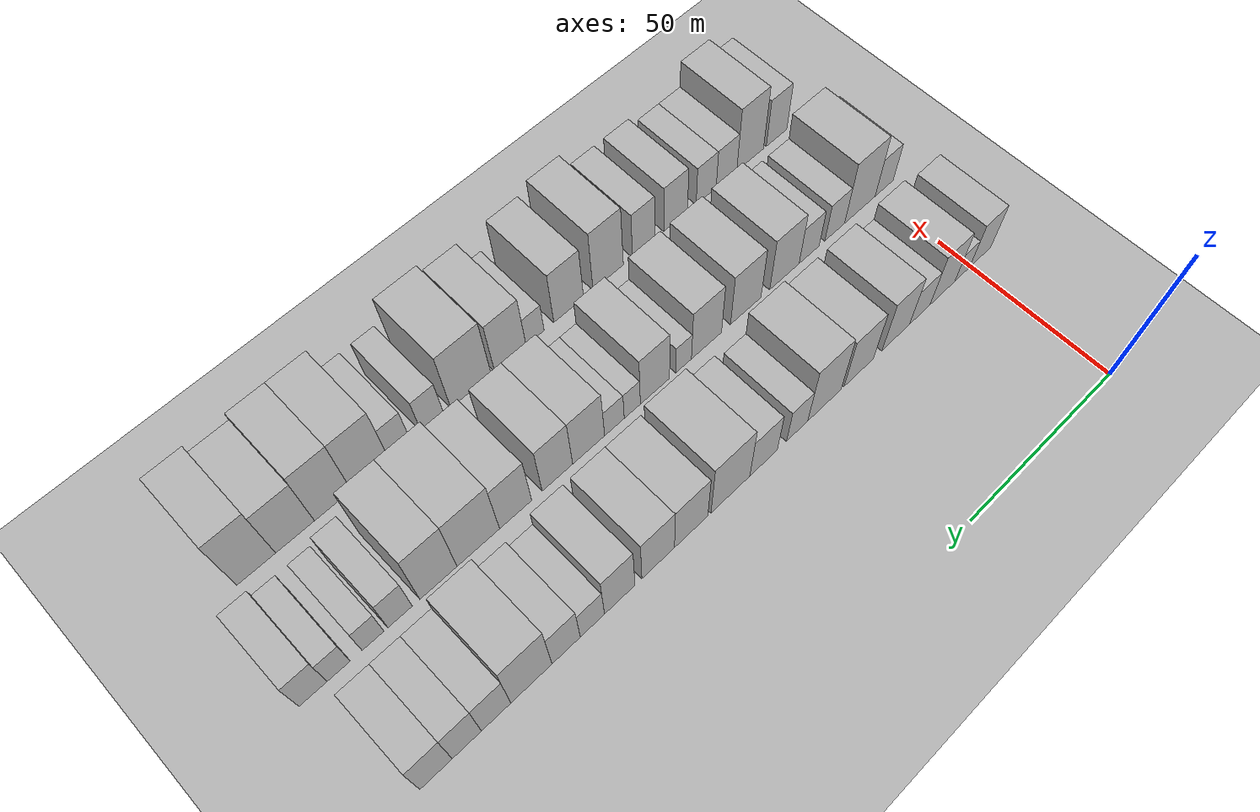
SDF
<sdf version="1.6">
 <world name="default">
  <include><name>ground_plane_1</name><uri>model://HANNAS_ground_plane</uri></include>
  <include>
   <name>ground_plane_2</name>
   <uri>model://HANNAS_ground_plane</uri>
   <pose>100 0 0  0 0 0</pose>
  </include>
  <model name="building_36">
   <static>1</static>
   <pose>50.0000 -3.1231 0 0.000000 0.000000 0.000000</pose>
   <link name="link">
    <pose>0 0 9.00 0 0 0</pose>
    <collision name="collision"><geometry><box><size>20.0000 8.0743 18.0000</size></box></geometry></collision>
    <visual name="visual">
     <cast_shadows>0</cast_shadows>
     <geometry><box><size>20.0000 8.0743 18.0000</size></box></geometry>
     <material>
      <script>
       <uri>model://HANNAS_wall/materials/scripts</uri>
       <uri>model://HANNAS_wall/materials/textures</uri>
       <name>vrc/HANNAS_wall</name>
      </script>
     </material>
    </visual>
   </link>
  </model>
  <model name="building_37">
   <static>1</static>
   <pose>50.0000 3.6202 0 0.000000 0.000000 0.000000</pose>
   <link name="link">
    <pose>0 0 6.00 0 0 0</pose>
    <collision name="collision"><geometry><box><size>20.0000 5.4123 12.0000</size></box></geometry></collision>
    <visual name="visual">
     <cast_shadows>0</cast_shadows>
     <geometry><box><size>20.0000 5.4123 12.0000</size></box></geometry>
     <material>
      <script>
       <uri>model://HANNAS_wall/materials/scripts</uri>
       <uri>model://HANNAS_wall/materials/textures</uri>
       <name>vrc/HANNAS_wall</name>
      </script>
     </material>
    </visual>
   </link>
  </model>
  <model name="building_38">
   <static>1</static>
   <pose>50.0000 10.9065 0 0.000000 0.000000 0.000000</pose>
   <link name="link">
    <pose>0 0 10.50 0 0 0</pose>
    <collision name="collision"><geometry><box><size>20.0000 9.1602 21.0000</size></box></geometry></collision>
    <visual name="visual">
     <cast_shadows>0</cast_shadows>
     <geometry><box><size>20.0000 9.1602 21.0000</size></box></geometry>
     <material>
      <script>
       <uri>model://HANNAS_wall/materials/scripts</uri>
       <uri>model://HANNAS_wall/materials/textures</uri>
       <name>vrc/HANNAS_wall</name>
      </script>
     </material>
    </visual>
   </link>
  </model>
  <model name="building_39">
   <static>1</static>
   <pose>50.0000 19.1723 0 0.000000 0.000000 0.000000</pose>
   <link name="link">
    <pose>0 0 7.50 0 0 0</pose>
    <collision name="collision"><geometry><box><size>20.0000 7.3716 15.0000</size></box></geometry></collision>
    <visual name="visual">
     <cast_shadows>0</cast_shadows>
     <geometry><box><size>20.0000 7.3716 15.0000</size></box></geometry>
     <material>
      <script>
       <uri>model://HANNAS_wall/materials/scripts</uri>
       <uri>model://HANNAS_wall/materials/textures</uri>
       <name>vrc/HANNAS_wall</name>
      </script>
     </material>
    </visual>
   </link>
  </model>
  <model name="building_40">
   <static>1</static>
   <pose>50.0000 27.6833 0 0.000000 0.000000 0.000000</pose>
   <link name="link">
    <pose>0 0 10.50 0 0 0</pose>
    <collision name="collision"><geometry><box><size>20.0000 9.6505 21.0000</size></box></geometry></collision>
    <visual name="visual">
     <cast_shadows>0</cast_shadows>
     <geometry><box><size>20.0000 9.6505 21.0000</size></box></geometry>
     <material>
      <script>
       <uri>model://HANNAS_wall/materials/scripts</uri>
       <uri>model://HANNAS_wall/materials/textures</uri>
       <name>vrc/HANNAS_wall</name>
      </script>
     </material>
    </visual>
   </link>
  </model>
  <model name="building_41">
   <static>1</static>
   <pose>50.0000 40.5229 0 0.000000 0.000000 0.000000</pose>
   <link name="link">
    <pose>0 0 10.50 0 0 0</pose>
    <collision name="collision"><geometry><box><size>20.0000 10.0286 21.0000</size></box></geometry></collision>
    <visual name="visual">
     <cast_shadows>0</cast_shadows>
     <geometry><box><size>20.0000 10.0286 21.0000</size></box></geometry>
     <material>
      <script>
       <uri>model://HANNAS_wall/materials/scripts</uri>
       <uri>model://HANNAS_wall/materials/textures</uri>
       <name>vrc/HANNAS_wall</name>
      </script>
     </material>
    </visual>
   </link>
  </model>
  <model name="building_42">
   <static>1</static>
   <pose>50.0000 52.1175 0 0.000000 0.000000 0.000000</pose>
   <link name="link">
    <pose>0 0 12.00 0 0 0</pose>
    <collision name="collision"><geometry><box><size>20.0000 11.1605 24.0000</size></box></geometry></collision>
    <visual name="visual">
     <cast_shadows>0</cast_shadows>
     <geometry><box><size>20.0000 11.1605 24.0000</size></box></geometry>
     <material>
      <script>
       <uri>model://HANNAS_wall/materials/scripts</uri>
       <uri>model://HANNAS_wall/materials/textures</uri>
       <name>vrc/HANNAS_wall</name>
      </script>
     </material>
    </visual>
   </link>
  </model>
  <model name="building_43">
   <static>1</static>
   <pose>50.0000 61.1366 0 0.000000 0.000000 0.000000</pose>
   <link name="link">
    <pose>0 0 7.50 0 0 0</pose>
    <collision name="collision"><geometry><box><size>20.0000 6.8779 15.0000</size></box></geometry></collision>
    <visual name="visual">
     <cast_shadows>0</cast_shadows>
     <geometry><box><size>20.0000 6.8779 15.0000</size></box></geometry>
     <material>
      <script>
       <uri>model://HANNAS_wall/materials/scripts</uri>
       <uri>model://HANNAS_wall/materials/textures</uri>
       <name>vrc/HANNAS_wall</name>
      </script>
     </material>
    </visual>
   </link>
  </model>
  <model name="building_44">
   <static>1</static>
   <pose>50.0000 71.9413 0 0.000000 0.000000 0.000000</pose>
   <link name="link">
    <pose>0 0 9.00 0 0 0</pose>
    <collision name="collision"><geometry><box><size>20.0000 8.7314 18.0000</size></box></geometry></collision>
    <visual name="visual">
     <cast_shadows>0</cast_shadows>
     <geometry><box><size>20.0000 8.7314 18.0000</size></box></geometry>
     <material>
      <script>
       <uri>model://HANNAS_wall/materials/scripts</uri>
       <uri>model://HANNAS_wall/materials/textures</uri>
       <name>vrc/HANNAS_wall</name>
      </script>
     </material>
    </visual>
   </link>
  </model>
  <model name="building_45">
   <static>1</static>
   <pose>50.0000 82.3066 0 0.000000 0.000000 0.000000</pose>
   <link name="link">
    <pose>0 0 12.00 0 0 0</pose>
    <collision name="collision"><geometry><box><size>20.0000 11.9993 24.0000</size></box></geometry></collision>
    <visual name="visual">
     <cast_shadows>0</cast_shadows>
     <geometry><box><size>20.0000 11.9993 24.0000</size></box></geometry>
     <material>
      <script>
       <uri>model://HANNAS_wall/materials/scripts</uri>
       <uri>model://HANNAS_wall/materials/textures</uri>
       <name>vrc/HANNAS_wall</name>
      </script>
     </material>
    </visual>
   </link>
  </model>
  <model name="building_46">
   <static>1</static>
   <pose>50.0000 94.3098 0 0.000000 0.000000 0.000000</pose>
   <link name="link">
    <pose>0 0 10.50 0 0 0</pose>
    <collision name="collision"><geometry><box><size>20.0000 10.0070 21.0000</size></box></geometry></collision>
    <visual name="visual">
     <cast_shadows>0</cast_shadows>
     <geometry><box><size>20.0000 10.0070 21.0000</size></box></geometry>
     <material>
      <script>
       <uri>model://HANNAS_wall/materials/scripts</uri>
       <uri>model://HANNAS_wall/materials/textures</uri>
       <name>vrc/HANNAS_wall</name>
      </script>
     </material>
    </visual>
   </link>
  </model>
  <model name="building_47">
   <static>1</static>
   <pose>50.0000 104.0893 0 0.000000 0.000000 0.000000</pose>
   <link name="link">
    <pose>0 0 10.50 0 0 0</pose>
    <collision name="collision"><geometry><box><size>20.0000 9.5521 21.0000</size></box></geometry></collision>
    <visual name="visual">
     <cast_shadows>0</cast_shadows>
     <geometry><box><size>20.0000 9.5521 21.0000</size></box></geometry>
     <material>
      <script>
       <uri>model://HANNAS_wall/materials/scripts</uri>
       <uri>model://HANNAS_wall/materials/textures</uri>
       <name>vrc/HANNAS_wall</name>
      </script>
     </material>
    </visual>
   </link>
  </model>
  <model name="building_48">
   <static>1</static>
   <pose>50.0000 115.2018 0 0.000000 0.000000 0.000000</pose>
   <link name="link">
    <pose>0 0 10.50 0 0 0</pose>
    <collision name="collision"><geometry><box><size>20.0000 8.6728 21.0000</size></box></geometry></collision>
    <visual name="visual">
     <cast_shadows>0</cast_shadows>
     <geometry><box><size>20.0000 8.6728 21.0000</size></box></geometry>
     <material>
      <script>
       <uri>model://HANNAS_wall/materials/scripts</uri>
       <uri>model://HANNAS_wall/materials/textures</uri>
       <name>vrc/HANNAS_wall</name>
      </script>
     </material>
    </visual>
   </link>
  </model>
  <model name="building_49">
   <static>1</static>
   <pose>50.0000 122.9129 0 0.000000 0.000000 0.000000</pose>
   <link name="link">
    <pose>0 0 7.50 0 0 0</pose>
    <collision name="collision"><geometry><box><size>20.0000 6.7494 15.0000</size></box></geometry></collision>
    <visual name="visual">
     <cast_shadows>0</cast_shadows>
     <geometry><box><size>20.0000 6.7494 15.0000</size></box></geometry>
     <material>
      <script>
       <uri>model://HANNAS_wall/materials/scripts</uri>
       <uri>model://HANNAS_wall/materials/textures</uri>
       <name>vrc/HANNAS_wall</name>
      </script>
     </material>
    </visual>
   </link>
  </model>
  <model name="building_50">
   <static>1</static>
   <pose>50.0000 130.1622 0 0.000000 0.000000 0.000000</pose>
   <link name="link">
    <pose>0 0 9.00 0 0 0</pose>
    <collision name="collision"><geometry><box><size>20.0000 7.7492 18.0000</size></box></geometry></collision>
    <visual name="visual">
     <cast_shadows>0</cast_shadows>
     <geometry><box><size>20.0000 7.7492 18.0000</size></box></geometry>
     <material>
      <script>
       <uri>model://HANNAS_wall/materials/scripts</uri>
       <uri>model://HANNAS_wall/materials/textures</uri>
       <name>vrc/HANNAS_wall</name>
      </script>
     </material>
    </visual>
   </link>
  </model>
  <model name="building_51">
   <static>1</static>
   <pose>50.0000 139.5643 0 0.000000 0.000000 0.000000</pose>
   <link name="link">
    <pose>0 0 12.00 0 0 0</pose>
    <collision name="collision"><geometry><box><size>20.0000 11.0550 24.0000</size></box></geometry></collision>
    <visual name="visual">
     <cast_shadows>0</cast_shadows>
     <geometry><box><size>20.0000 11.0550 24.0000</size></box></geometry>
     <material>
      <script>
       <uri>model://HANNAS_wall/materials/scripts</uri>
       <uri>model://HANNAS_wall/materials/textures</uri>
       <name>vrc/HANNAS_wall</name>
      </script>
     </material>
    </visual>
   </link>
  </model>
  <model name="building_52">
   <static>1</static>
   <pose>50.0000 148.9306 0 0.000000 0.000000 0.000000</pose>
   <link name="link">
    <pose>0 0 9.00 0 0 0</pose>
    <collision name="collision"><geometry><box><size>20.0000 7.6774 18.0000</size></box></geometry></collision>
    <visual name="visual">
     <cast_shadows>0</cast_shadows>
     <geometry><box><size>20.0000 7.6774 18.0000</size></box></geometry>
     <material>
      <script>
       <uri>model://HANNAS_wall/materials/scripts</uri>
       <uri>model://HANNAS_wall/materials/textures</uri>
       <name>vrc/HANNAS_wall</name>
      </script>
     </material>
    </visual>
   </link>
  </model>
  <model name="building_53">
   <static>1</static>
   <pose>50.0000 156.5016 0 0.000000 0.000000 0.000000</pose>
   <link name="link">
    <pose>0 0 9.00 0 0 0</pose>
    <collision name="collision"><geometry><box><size>20.0000 7.4646 18.0000</size></box></geometry></collision>
    <visual name="visual">
     <cast_shadows>0</cast_shadows>
     <geometry><box><size>20.0000 7.4646 18.0000</size></box></geometry>
     <material>
      <script>
       <uri>model://HANNAS_wall/materials/scripts</uri>
       <uri>model://HANNAS_wall/materials/textures</uri>
       <name>vrc/HANNAS_wall</name>
      </script>
     </material>
    </visual>
   </link>
  </model>
  <model name="building_54">
   <static>1</static>
   <pose>50.0000 164.2882 0 0.000000 0.000000 0.000000</pose>
   <link name="link">
    <pose>0 0 9.00 0 0 0</pose>
    <collision name="collision"><geometry><box><size>20.0000 8.1086 18.0000</size></box></geometry></collision>
    <visual name="visual">
     <cast_shadows>0</cast_shadows>
     <geometry><box><size>20.0000 8.1086 18.0000</size></box></geometry>
     <material>
      <script>
       <uri>model://HANNAS_wall/materials/scripts</uri>
       <uri>model://HANNAS_wall/materials/textures</uri>
       <name>vrc/HANNAS_wall</name>
      </script>
     </material>
    </visual>
   </link>
  </model>
  <model name="building_112">
   <static>1</static>
   <pose>79.0000 -2.1463 0 0.000000 0.000000 0.000000</pose>
   <link name="link">
    <pose>0 0 7.50 0 0 0</pose>
    <collision name="collision"><geometry><box><size>20.0000 6.7559 15.0000</size></box></geometry></collision>
    <visual name="visual">
     <cast_shadows>0</cast_shadows>
     <geometry><box><size>20.0000 6.7559 15.0000</size></box></geometry>
     <material>
      <script>
       <uri>model://HANNAS_wall/materials/scripts</uri>
       <uri>model://HANNAS_wall/materials/textures</uri>
       <name>vrc/HANNAS_wall</name>
      </script>
     </material>
    </visual>
   </link>
  </model>
  <model name="building_113">
   <static>1</static>
   <pose>79.0000 6.8557 0 0.000000 0.000000 0.000000</pose>
   <link name="link">
    <pose>0 0 12.00 0 0 0</pose>
    <collision name="collision"><geometry><box><size>20.0000 11.2482 24.0000</size></box></geometry></collision>
    <visual name="visual">
     <cast_shadows>0</cast_shadows>
     <geometry><box><size>20.0000 11.2482 24.0000</size></box></geometry>
     <material>
      <script>
       <uri>model://HANNAS_wall/materials/scripts</uri>
       <uri>model://HANNAS_wall/materials/textures</uri>
       <name>vrc/HANNAS_wall</name>
      </script>
     </material>
    </visual>
   </link>
  </model>
  <model name="building_114">
   <static>1</static>
   <pose>79.0000 16.0482 0 0.000000 0.000000 0.000000</pose>
   <link name="link">
    <pose>0 0 7.50 0 0 0</pose>
    <collision name="collision"><geometry><box><size>20.0000 7.1368 15.0000</size></box></geometry></collision>
    <visual name="visual">
     <cast_shadows>0</cast_shadows>
     <geometry><box><size>20.0000 7.1368 15.0000</size></box></geometry>
     <material>
      <script>
       <uri>model://HANNAS_wall/materials/scripts</uri>
       <uri>model://HANNAS_wall/materials/textures</uri>
       <name>vrc/HANNAS_wall</name>
      </script>
     </material>
    </visual>
   </link>
  </model>
  <model name="building_115">
   <static>1</static>
   <pose>79.0000 25.1755 0 0.000000 0.000000 0.000000</pose>
   <link name="link">
    <pose>0 0 7.50 0 0 0</pose>
    <collision name="collision"><geometry><box><size>20.0000 7.1177 15.0000</size></box></geometry></collision>
    <visual name="visual">
     <cast_shadows>0</cast_shadows>
     <geometry><box><size>20.0000 7.1177 15.0000</size></box></geometry>
     <material>
      <script>
       <uri>model://HANNAS_wall/materials/scripts</uri>
       <uri>model://HANNAS_wall/materials/textures</uri>
       <name>vrc/HANNAS_wall</name>
      </script>
     </material>
    </visual>
   </link>
  </model>
  <model name="building_116">
   <static>1</static>
   <pose>79.0000 33.8125 0 0.000000 0.000000 0.000000</pose>
   <link name="link">
    <pose>0 0 10.50 0 0 0</pose>
    <collision name="collision"><geometry><box><size>20.0000 10.1564 21.0000</size></box></geometry></collision>
    <visual name="visual">
     <cast_shadows>0</cast_shadows>
     <geometry><box><size>20.0000 10.1564 21.0000</size></box></geometry>
     <material>
      <script>
       <uri>model://HANNAS_wall/materials/scripts</uri>
       <uri>model://HANNAS_wall/materials/textures</uri>
       <name>vrc/HANNAS_wall</name>
      </script>
     </material>
    </visual>
   </link>
  </model>
  <model name="building_117">
   <static>1</static>
   <pose>79.0000 47.0017 0 0.000000 0.000000 0.000000</pose>
   <link name="link">
    <pose>0 0 10.50 0 0 0</pose>
    <collision name="collision"><geometry><box><size>20.0000 10.2220 21.0000</size></box></geometry></collision>
    <visual name="visual">
     <cast_shadows>0</cast_shadows>
     <geometry><box><size>20.0000 10.2220 21.0000</size></box></geometry>
     <material>
      <script>
       <uri>model://HANNAS_wall/materials/scripts</uri>
       <uri>model://HANNAS_wall/materials/textures</uri>
       <name>vrc/HANNAS_wall</name>
      </script>
     </material>
    </visual>
   </link>
  </model>
  <model name="building_118">
   <static>1</static>
   <pose>79.0000 60.0276 0 0.000000 0.000000 0.000000</pose>
   <link name="link">
    <pose>0 0 10.50 0 0 0</pose>
    <collision name="collision"><geometry><box><size>20.0000 9.8298 21.0000</size></box></geometry></collision>
    <visual name="visual">
     <cast_shadows>0</cast_shadows>
     <geometry><box><size>20.0000 9.8298 21.0000</size></box></geometry>
     <material>
      <script>
       <uri>model://HANNAS_wall/materials/scripts</uri>
       <uri>model://HANNAS_wall/materials/textures</uri>
       <name>vrc/HANNAS_wall</name>
      </script>
     </material>
    </visual>
   </link>
  </model>
  <model name="building_119">
   <static>1</static>
   <pose>79.0000 67.4503 0 0.000000 0.000000 0.000000</pose>
   <link name="link">
    <pose>0 0 6.00 0 0 0</pose>
    <collision name="collision"><geometry><box><size>20.0000 5.0156 12.0000</size></box></geometry></collision>
    <visual name="visual">
     <cast_shadows>0</cast_shadows>
     <geometry><box><size>20.0000 5.0156 12.0000</size></box></geometry>
     <material>
      <script>
       <uri>model://HANNAS_wall/materials/scripts</uri>
       <uri>model://HANNAS_wall/materials/textures</uri>
       <name>vrc/HANNAS_wall</name>
      </script>
     </material>
    </visual>
   </link>
  </model>
  <model name="building_120">
   <static>1</static>
   <pose>79.0000 76.5302 0 0.000000 0.000000 0.000000</pose>
   <link name="link">
    <pose>0 0 10.50 0 0 0</pose>
    <collision name="collision"><geometry><box><size>20.0000 9.1442 21.0000</size></box></geometry></collision>
    <visual name="visual">
     <cast_shadows>0</cast_shadows>
     <geometry><box><size>20.0000 9.1442 21.0000</size></box></geometry>
     <material>
      <script>
       <uri>model://HANNAS_wall/materials/scripts</uri>
       <uri>model://HANNAS_wall/materials/textures</uri>
       <name>vrc/HANNAS_wall</name>
      </script>
     </material>
    </visual>
   </link>
  </model>
  <model name="building_121">
   <static>1</static>
   <pose>79.0000 83.5909 0 0.000000 0.000000 0.000000</pose>
   <link name="link">
    <pose>0 0 6.00 0 0 0</pose>
    <collision name="collision"><geometry><box><size>20.0000 4.9772 12.0000</size></box></geometry></collision>
    <visual name="visual">
     <cast_shadows>0</cast_shadows>
     <geometry><box><size>20.0000 4.9772 12.0000</size></box></geometry>
     <material>
      <script>
       <uri>model://HANNAS_wall/materials/scripts</uri>
       <uri>model://HANNAS_wall/materials/textures</uri>
       <name>vrc/HANNAS_wall</name>
      </script>
     </material>
    </visual>
   </link>
  </model>
  <model name="building_122">
   <static>1</static>
   <pose>79.0000 89.0601 0 0.000000 0.000000 0.000000</pose>
   <link name="link">
    <pose>0 0 6.00 0 0 0</pose>
    <collision name="collision"><geometry><box><size>20.0000 5.9613 12.0000</size></box></geometry></collision>
    <visual name="visual">
     <cast_shadows>0</cast_shadows>
     <geometry><box><size>20.0000 5.9613 12.0000</size></box></geometry>
     <material>
      <script>
       <uri>model://HANNAS_wall/materials/scripts</uri>
       <uri>model://HANNAS_wall/materials/textures</uri>
       <name>vrc/HANNAS_wall</name>
      </script>
     </material>
    </visual>
   </link>
  </model>
  <model name="building_123">
   <static>1</static>
   <pose>79.0000 96.8307 0 0.000000 0.000000 0.000000</pose>
   <link name="link">
    <pose>0 0 10.50 0 0 0</pose>
    <collision name="collision"><geometry><box><size>20.0000 9.5799 21.0000</size></box></geometry></collision>
    <visual name="visual">
     <cast_shadows>0</cast_shadows>
     <geometry><box><size>20.0000 9.5799 21.0000</size></box></geometry>
     <material>
      <script>
       <uri>model://HANNAS_wall/materials/scripts</uri>
       <uri>model://HANNAS_wall/materials/textures</uri>
       <name>vrc/HANNAS_wall</name>
      </script>
     </material>
    </visual>
   </link>
  </model>
  <model name="building_124">
   <static>1</static>
   <pose>79.0000 106.0842 0 0.000000 0.000000 0.000000</pose>
   <link name="link">
    <pose>0 0 10.50 0 0 0</pose>
    <collision name="collision"><geometry><box><size>20.0000 8.9272 21.0000</size></box></geometry></collision>
    <visual name="visual">
     <cast_shadows>0</cast_shadows>
     <geometry><box><size>20.0000 8.9272 21.0000</size></box></geometry>
     <material>
      <script>
       <uri>model://HANNAS_wall/materials/scripts</uri>
       <uri>model://HANNAS_wall/materials/textures</uri>
       <name>vrc/HANNAS_wall</name>
      </script>
     </material>
    </visual>
   </link>
  </model>
  <model name="building_125">
   <static>1</static>
   <pose>79.0000 118.1144 0 0.000000 0.000000 0.000000</pose>
   <link name="link">
    <pose>0 0 10.50 0 0 0</pose>
    <collision name="collision"><geometry><box><size>20.0000 9.1332 21.0000</size></box></geometry></collision>
    <visual name="visual">
     <cast_shadows>0</cast_shadows>
     <geometry><box><size>20.0000 9.1332 21.0000</size></box></geometry>
     <material>
      <script>
       <uri>model://HANNAS_wall/materials/scripts</uri>
       <uri>model://HANNAS_wall/materials/textures</uri>
       <name>vrc/HANNAS_wall</name>
      </script>
     </material>
    </visual>
   </link>
  </model>
  <model name="building_126">
   <static>1</static>
   <pose>79.0000 128.5687 0 0.000000 0.000000 0.000000</pose>
   <link name="link">
    <pose>0 0 12.00 0 0 0</pose>
    <collision name="collision"><geometry><box><size>20.0000 11.7753 24.0000</size></box></geometry></collision>
    <visual name="visual">
     <cast_shadows>0</cast_shadows>
     <geometry><box><size>20.0000 11.7753 24.0000</size></box></geometry>
     <material>
      <script>
       <uri>model://HANNAS_wall/materials/scripts</uri>
       <uri>model://HANNAS_wall/materials/textures</uri>
       <name>vrc/HANNAS_wall</name>
      </script>
     </material>
    </visual>
   </link>
  </model>
  <model name="building_127">
   <static>1</static>
   <pose>79.0000 139.4692 0 0.000000 0.000000 0.000000</pose>
   <link name="link">
    <pose>0 0 12.00 0 0 0</pose>
    <collision name="collision"><geometry><box><size>20.0000 10.0257 24.0000</size></box></geometry></collision>
    <visual name="visual">
     <cast_shadows>0</cast_shadows>
     <geometry><box><size>20.0000 10.0257 24.0000</size></box></geometry>
     <material>
      <script>
       <uri>model://HANNAS_wall/materials/scripts</uri>
       <uri>model://HANNAS_wall/materials/textures</uri>
       <name>vrc/HANNAS_wall</name>
      </script>
     </material>
    </visual>
   </link>
  </model>
  <model name="building_128">
   <static>1</static>
   <pose>79.0000 149.6967 0 0.000000 0.000000 0.000000</pose>
   <link name="link">
    <pose>0 0 7.50 0 0 0</pose>
    <collision name="collision"><geometry><box><size>20.0000 6.4292 15.0000</size></box></geometry></collision>
    <visual name="visual">
     <cast_shadows>0</cast_shadows>
     <geometry><box><size>20.0000 6.4292 15.0000</size></box></geometry>
     <material>
      <script>
       <uri>model://HANNAS_wall/materials/scripts</uri>
       <uri>model://HANNAS_wall/materials/textures</uri>
       <name>vrc/HANNAS_wall</name>
      </script>
     </material>
    </visual>
   </link>
  </model>
  <model name="building_129">
   <static>1</static>
   <pose>79.0000 156.7341 0 0.000000 0.000000 0.000000</pose>
   <link name="link">
    <pose>0 0 6.00 0 0 0</pose>
    <collision name="collision"><geometry><box><size>20.0000 5.6455 12.0000</size></box></geometry></collision>
    <visual name="visual">
     <cast_shadows>0</cast_shadows>
     <geometry><box><size>20.0000 5.6455 12.0000</size></box></geometry>
     <material>
      <script>
       <uri>model://HANNAS_wall/materials/scripts</uri>
       <uri>model://HANNAS_wall/materials/textures</uri>
       <name>vrc/HANNAS_wall</name>
      </script>
     </material>
    </visual>
   </link>
  </model>
  <model name="building_130">
   <static>1</static>
   <pose>79.0000 165.4614 0 0.000000 0.000000 0.000000</pose>
   <link name="link">
    <pose>0 0 6.00 0 0 0</pose>
    <collision name="collision"><geometry><box><size>20.0000 5.8091 12.0000</size></box></geometry></collision>
    <visual name="visual">
     <cast_shadows>0</cast_shadows>
     <geometry><box><size>20.0000 5.8091 12.0000</size></box></geometry>
     <material>
      <script>
       <uri>model://HANNAS_wall/materials/scripts</uri>
       <uri>model://HANNAS_wall/materials/textures</uri>
       <name>vrc/HANNAS_wall</name>
      </script>
     </material>
    </visual>
   </link>
  </model>
  <model name="building_131">
   <static>1</static>
   <pose>79.0000 171.8703 0 0.000000 0.000000 0.000000</pose>
   <link name="link">
    <pose>0 0 7.50 0 0 0</pose>
    <collision name="collision"><geometry><box><size>20.0000 7.0088 15.0000</size></box></geometry></collision>
    <visual name="visual">
     <cast_shadows>0</cast_shadows>
     <geometry><box><size>20.0000 7.0088 15.0000</size></box></geometry>
     <material>
      <script>
       <uri>model://HANNAS_wall/materials/scripts</uri>
       <uri>model://HANNAS_wall/materials/textures</uri>
       <name>vrc/HANNAS_wall</name>
      </script>
     </material>
    </visual>
   </link>
  </model>
  <model name="building_190">
   <static>1</static>
   <pose>108.0000 5.3057 0 0.000000 0.000000 0.000000</pose>
   <link name="link">
    <pose>0 0 9.00 0 0 0</pose>
    <collision name="collision"><geometry><box><size>20.0000 7.5459 18.0000</size></box></geometry></collision>
    <visual name="visual">
     <cast_shadows>0</cast_shadows>
     <geometry><box><size>20.0000 7.5459 18.0000</size></box></geometry>
     <material>
      <script>
       <uri>model://HANNAS_wall/materials/scripts</uri>
       <uri>model://HANNAS_wall/materials/textures</uri>
       <name>vrc/HANNAS_wall</name>
      </script>
     </material>
    </visual>
   </link>
  </model>
  <model name="building_191">
   <static>1</static>
   <pose>108.0000 14.9046 0 0.000000 0.000000 0.000000</pose>
   <link name="link">
    <pose>0 0 12.00 0 0 0</pose>
    <collision name="collision"><geometry><box><size>20.0000 9.6519 24.0000</size></box></geometry></collision>
    <visual name="visual">
     <cast_shadows>0</cast_shadows>
     <geometry><box><size>20.0000 9.6519 24.0000</size></box></geometry>
     <material>
      <script>
       <uri>model://HANNAS_wall/materials/scripts</uri>
       <uri>model://HANNAS_wall/materials/textures</uri>
       <name>vrc/HANNAS_wall</name>
      </script>
     </material>
    </visual>
   </link>
  </model>
  <model name="building_192">
   <static>1</static>
   <pose>108.0000 23.3704 0 0.000000 0.000000 0.000000</pose>
   <link name="link">
    <pose>0 0 7.50 0 0 0</pose>
    <collision name="collision"><geometry><box><size>20.0000 7.2797 15.0000</size></box></geometry></collision>
    <visual name="visual">
     <cast_shadows>0</cast_shadows>
     <geometry><box><size>20.0000 7.2797 15.0000</size></box></geometry>
     <material>
      <script>
       <uri>model://HANNAS_wall/materials/scripts</uri>
       <uri>model://HANNAS_wall/materials/textures</uri>
       <name>vrc/HANNAS_wall</name>
      </script>
     </material>
    </visual>
   </link>
  </model>
  <model name="building_193">
   <static>1</static>
   <pose>108.0000 30.5075 0 0.000000 0.000000 0.000000</pose>
   <link name="link">
    <pose>0 0 7.50 0 0 0</pose>
    <collision name="collision"><geometry><box><size>20.0000 6.9945 15.0000</size></box></geometry></collision>
    <visual name="visual">
     <cast_shadows>0</cast_shadows>
     <geometry><box><size>20.0000 6.9945 15.0000</size></box></geometry>
     <material>
      <script>
       <uri>model://HANNAS_wall/materials/scripts</uri>
       <uri>model://HANNAS_wall/materials/textures</uri>
       <name>vrc/HANNAS_wall</name>
      </script>
     </material>
    </visual>
   </link>
  </model>
  <model name="building_194">
   <static>1</static>
   <pose>108.0000 41.0356 0 0.000000 0.000000 0.000000</pose>
   <link name="link">
    <pose>0 0 9.00 0 0 0</pose>
    <collision name="collision"><geometry><box><size>20.0000 8.0617 18.0000</size></box></geometry></collision>
    <visual name="visual">
     <cast_shadows>0</cast_shadows>
     <geometry><box><size>20.0000 8.0617 18.0000</size></box></geometry>
     <material>
      <script>
       <uri>model://HANNAS_wall/materials/scripts</uri>
       <uri>model://HANNAS_wall/materials/textures</uri>
       <name>vrc/HANNAS_wall</name>
      </script>
     </material>
    </visual>
   </link>
  </model>
  <model name="building_195">
   <static>1</static>
   <pose>108.0000 51.7878 0 0.000000 0.000000 0.000000</pose>
   <link name="link">
    <pose>0 0 9.00 0 0 0</pose>
    <collision name="collision"><geometry><box><size>20.0000 7.4427 18.0000</size></box></geometry></collision>
    <visual name="visual">
     <cast_shadows>0</cast_shadows>
     <geometry><box><size>20.0000 7.4427 18.0000</size></box></geometry>
     <material>
      <script>
       <uri>model://HANNAS_wall/materials/scripts</uri>
       <uri>model://HANNAS_wall/materials/textures</uri>
       <name>vrc/HANNAS_wall</name>
      </script>
     </material>
    </visual>
   </link>
  </model>
  <model name="building_196">
   <static>1</static>
   <pose>108.0000 63.4338 0 0.000000 0.000000 0.000000</pose>
   <link name="link">
    <pose>0 0 12.00 0 0 0</pose>
    <collision name="collision"><geometry><box><size>20.0000 9.8494 24.0000</size></box></geometry></collision>
    <visual name="visual">
     <cast_shadows>0</cast_shadows>
     <geometry><box><size>20.0000 9.8494 24.0000</size></box></geometry>
     <material>
      <script>
       <uri>model://HANNAS_wall/materials/scripts</uri>
       <uri>model://HANNAS_wall/materials/textures</uri>
       <name>vrc/HANNAS_wall</name>
      </script>
     </material>
    </visual>
   </link>
  </model>
  <model name="building_197">
   <static>1</static>
   <pose>108.0000 76.0510 0 0.000000 0.000000 0.000000</pose>
   <link name="link">
    <pose>0 0 10.50 0 0 0</pose>
    <collision name="collision"><geometry><box><size>20.0000 9.3849 21.0000</size></box></geometry></collision>
    <visual name="visual">
     <cast_shadows>0</cast_shadows>
     <geometry><box><size>20.0000 9.3849 21.0000</size></box></geometry>
     <material>
      <script>
       <uri>model://HANNAS_wall/materials/scripts</uri>
       <uri>model://HANNAS_wall/materials/textures</uri>
       <name>vrc/HANNAS_wall</name>
      </script>
     </material>
    </visual>
   </link>
  </model>
  <model name="building_198">
   <static>1</static>
   <pose>108.0000 86.5178 0 0.000000 0.000000 0.000000</pose>
   <link name="link">
    <pose>0 0 6.00 0 0 0</pose>
    <collision name="collision"><geometry><box><size>20.0000 5.5487 12.0000</size></box></geometry></collision>
    <visual name="visual">
     <cast_shadows>0</cast_shadows>
     <geometry><box><size>20.0000 5.5487 12.0000</size></box></geometry>
     <material>
      <script>
       <uri>model://HANNAS_wall/materials/scripts</uri>
       <uri>model://HANNAS_wall/materials/textures</uri>
       <name>vrc/HANNAS_wall</name>
      </script>
     </material>
    </visual>
   </link>
  </model>
  <model name="building_199">
   <static>1</static>
   <pose>108.0000 94.0515 0 0.000000 0.000000 0.000000</pose>
   <link name="link">
    <pose>0 0 10.50 0 0 0</pose>
    <collision name="collision"><geometry><box><size>20.0000 9.5189 21.0000</size></box></geometry></collision>
    <visual name="visual">
     <cast_shadows>0</cast_shadows>
     <geometry><box><size>20.0000 9.5189 21.0000</size></box></geometry>
     <material>
      <script>
       <uri>model://HANNAS_wall/materials/scripts</uri>
       <uri>model://HANNAS_wall/materials/textures</uri>
       <name>vrc/HANNAS_wall</name>
      </script>
     </material>
    </visual>
   </link>
  </model>
  <model name="building_200">
   <static>1</static>
   <pose>108.0000 105.7714 0 0.000000 0.000000 0.000000</pose>
   <link name="link">
    <pose>0 0 12.00 0 0 0</pose>
    <collision name="collision"><geometry><box><size>20.0000 11.9208 24.0000</size></box></geometry></collision>
    <visual name="visual">
     <cast_shadows>0</cast_shadows>
     <geometry><box><size>20.0000 11.9208 24.0000</size></box></geometry>
     <material>
      <script>
       <uri>model://HANNAS_wall/materials/scripts</uri>
       <uri>model://HANNAS_wall/materials/textures</uri>
       <name>vrc/HANNAS_wall</name>
      </script>
     </material>
    </visual>
   </link>
  </model>
  <model name="building_201">
   <static>1</static>
   <pose>108.0000 116.9314 0 0.000000 0.000000 0.000000</pose>
   <link name="link">
    <pose>0 0 7.50 0 0 0</pose>
    <collision name="collision"><geometry><box><size>20.0000 6.3994 15.0000</size></box></geometry></collision>
    <visual name="visual">
     <cast_shadows>0</cast_shadows>
     <geometry><box><size>20.0000 6.3994 15.0000</size></box></geometry>
     <material>
      <script>
       <uri>model://HANNAS_wall/materials/scripts</uri>
       <uri>model://HANNAS_wall/materials/textures</uri>
       <name>vrc/HANNAS_wall</name>
      </script>
     </material>
    </visual>
   </link>
  </model>
  <model name="building_202">
   <static>1</static>
   <pose>108.0000 126.1711 0 0.000000 0.000000 0.000000</pose>
   <link name="link">
    <pose>0 0 7.50 0 0 0</pose>
    <collision name="collision"><geometry><box><size>20.0000 6.0800 15.0000</size></box></geometry></collision>
    <visual name="visual">
     <cast_shadows>0</cast_shadows>
     <geometry><box><size>20.0000 6.0800 15.0000</size></box></geometry>
     <material>
      <script>
       <uri>model://HANNAS_wall/materials/scripts</uri>
       <uri>model://HANNAS_wall/materials/textures</uri>
       <name>vrc/HANNAS_wall</name>
      </script>
     </material>
    </visual>
   </link>
  </model>
  <model name="building_203">
   <static>1</static>
   <pose>108.0000 134.4068 0 0.000000 0.000000 0.000000</pose>
   <link name="link">
    <pose>0 0 12.00 0 0 0</pose>
    <collision name="collision"><geometry><box><size>20.0000 10.3912 24.0000</size></box></geometry></collision>
    <visual name="visual">
     <cast_shadows>0</cast_shadows>
     <geometry><box><size>20.0000 10.3912 24.0000</size></box></geometry>
     <material>
      <script>
       <uri>model://HANNAS_wall/materials/scripts</uri>
       <uri>model://HANNAS_wall/materials/textures</uri>
       <name>vrc/HANNAS_wall</name>
      </script>
     </material>
    </visual>
   </link>
  </model>
  <model name="building_204">
   <static>1</static>
   <pose>108.0000 144.5494 0 0.000000 0.000000 0.000000</pose>
   <link name="link">
    <pose>0 0 12.00 0 0 0</pose>
    <collision name="collision"><geometry><box><size>20.0000 9.8941 24.0000</size></box></geometry></collision>
    <visual name="visual">
     <cast_shadows>0</cast_shadows>
     <geometry><box><size>20.0000 9.8941 24.0000</size></box></geometry>
     <material>
      <script>
       <uri>model://HANNAS_wall/materials/scripts</uri>
       <uri>model://HANNAS_wall/materials/textures</uri>
       <name>vrc/HANNAS_wall</name>
      </script>
     </material>
    </visual>
   </link>
  </model>
  <model name="building_205">
   <static>1</static>
   <pose>108.0000 154.5760 0 0.000000 0.000000 0.000000</pose>
   <link name="link">
    <pose>0 0 10.50 0 0 0</pose>
    <collision name="collision"><geometry><box><size>20.0000 10.1590 21.0000</size></box></geometry></collision>
    <visual name="visual">
     <cast_shadows>0</cast_shadows>
     <geometry><box><size>20.0000 10.1590 21.0000</size></box></geometry>
     <material>
      <script>
       <uri>model://HANNAS_wall/materials/scripts</uri>
       <uri>model://HANNAS_wall/materials/textures</uri>
       <name>vrc/HANNAS_wall</name>
      </script>
     </material>
    </visual>
   </link>
  </model>
  <model name="building_206">
   <static>1</static>
   <pose>108.0000 164.6118 0 0.000000 0.000000 0.000000</pose>
   <link name="link">
    <pose>0 0 12.00 0 0 0</pose>
    <collision name="collision"><geometry><box><size>20.0000 9.9124 24.0000</size></box></geometry></collision>
    <visual name="visual">
     <cast_shadows>0</cast_shadows>
     <geometry><box><size>20.0000 9.9124 24.0000</size></box></geometry>
     <material>
      <script>
       <uri>model://HANNAS_wall/materials/scripts</uri>
       <uri>model://HANNAS_wall/materials/textures</uri>
       <name>vrc/HANNAS_wall</name>
      </script>
     </material>
    </visual>
   </link>
  </model>
 </world>
</sdf>
